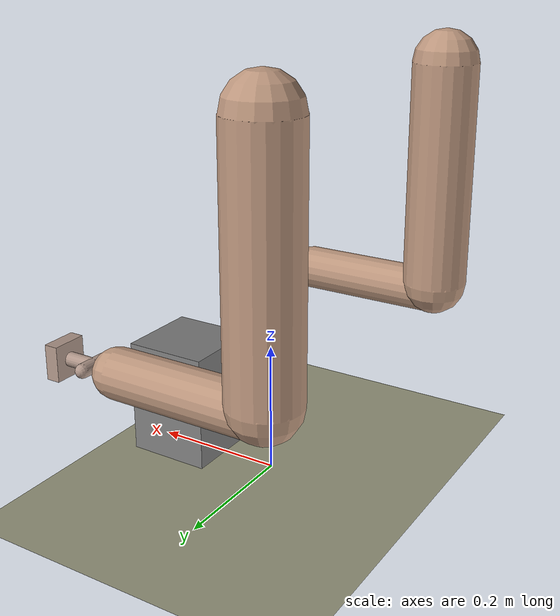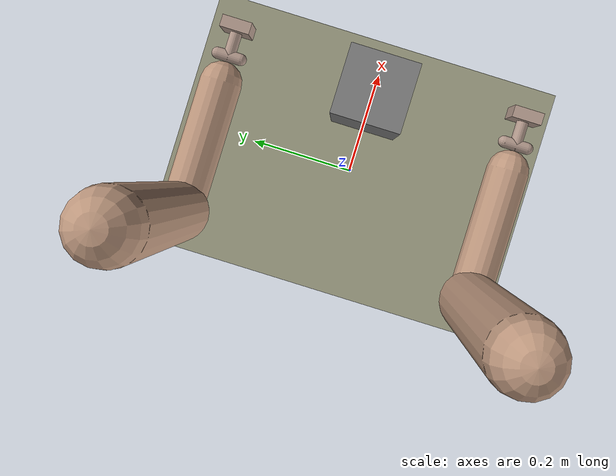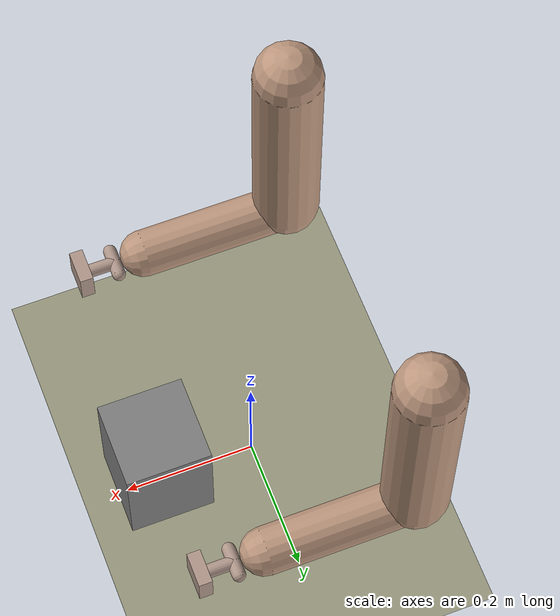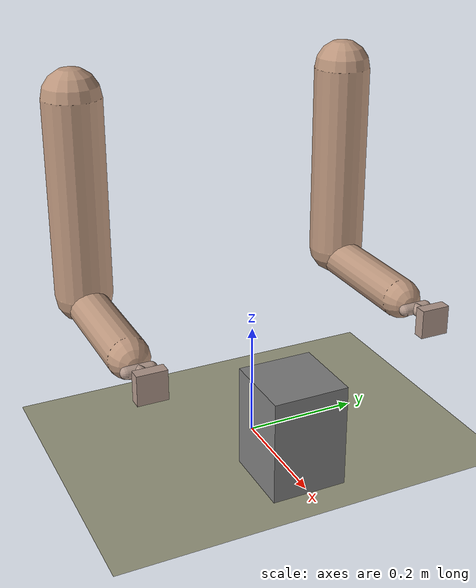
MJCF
<mujoco model="dual_arms">
	<compiler 	inertiafromgeom="true"
				angle="radian"/>

	<size 	nuser_jnt="1"
			nuser_geom="1"/>

	<option	timestep="0.01"
			gravity="0 0 -9.81"
			viscosity="0"/>

	<asset>
		<material name="MatGnd" specular=".3" shininess=".3" reflectance="0.3" rgba=".5 .55 .5 1"/>
	</asset>

	<default>
		<joint limited="true" damping="1" stiffness="0" armature=".1" user="0"/>
		<geom solref="0.008 1" solimp="0.95 0.95 0.01" margin="0.001" user="0"/>
		<motor ctrllimited="true" ctrlrange="-1 1"/>
		<position ctrllimited="true"/>

		<default class='0'>
			<geom friction="1 0.005 0.001" rgba=".75 .6 .5 1" contype="1" conaffinity="0"/>
		</default>

		<default class='1'>
			<geom friction="1 0.005 0.001" rgba=".7 .6 .55 1" contype="1" conaffinity="0"/>
		</default>

		<default class='l_arm'>
			<joint damping="5"/>
		</default>

		<default class='r_arm'>
			<joint damping="5"/>
		</default>
	</default>

	<worldbody>
		<light directional="true" cutoff="40" exponent="10" diffuse=".4 .4 .4" specular=".7 .7 .7" pos="0 0 1.5" dir="0 0 -1"/>
		<geom name="tableTop" material="MatGnd" type="plane" pos="0.15 0 0" size="0.4 0.6 0.5" rgba=".6 .6 .5 1" contype="1" conaffinity="1"/>

		<!--  ================= Left Arm ================= /-->
		<body name="left_upperarm" pos="-0.15 -0.25 0.6">
			<geom class="0" type="capsule" fromto="0 0 0 0 0 -0.345" size="0.05"/>
			<joint class='l_arm' name="l_s_abduction" type="hinge" pos="0 0 0" axis="1 0 0" range="-1.57 .7" user="001"/>
			<joint class='l_arm' name="l_s_flexion" type="hinge" pos="0 0 0" axis="0 -1 0" range="-.85 1.57" user="002"/>
			<joint class='l_arm' name="l_s_rotation" type="hinge" pos="0 0 0" axis="0 0 1" range="-.85 .85" user="003"/>

			<body name="left_forearm" pos="0 0 -0.36">
				<geom class="0" type="capsule" fromto="0 0 0 0.225 0 0" size="0.035"/>
				<joint class='l_arm' name="l_e_flexion" type="hinge" pos="0 0 0" axis="0 -1 0" range="-1.5 1.05" user="004"/>
				<joint class='l_arm' name="l_e_pronation" type="hinge" pos="0 0 0" axis="-1 0 0" range="-1.5 1.57" user="005"/>

		<!--  ================= Left Palm ================= /-->

				<body name="left_paddle" pos="0.27 0 0" quat="0 1 0 0">
					<site name="l_ee" pos="0.05 0.0 0" size="0.01" />
					<geom class="1" name="l_paddle_link" type="capsule" fromto="0 .0 0 0.05 0.0 0" size="0.01" />
					<geom class="1" name="l_paddle" type="box" pos="0.05 0.0 0" size="0.01 0.025 0.025" />

					<geom class="1" name="l_Geomclaw" type="capsule" fromto="0 .02 0 0 -.02 0" size="0.01" />
					<joint name="l_w_abduction" type="hinge" pos="0 0 0" axis="0 0 1" range="-.5 .5" user="006"/>
					<joint name="l_w_flexion" type="hinge" pos="0 0 0" axis="0 -1 0" range="-1.05 1.05" user="007"/>
				</body>

			</body>

		</body>

			<!--  ================= Right Arm ================= /-->
		<body name="right_upperarm" pos="-0.15 0.25 0.6">
			<geom class="0" type="capsule" fromto="0 0 0 0 0 -0.345" size="0.05"/>
			<joint class='r_arm' name="r_s_abduction" type="hinge" pos="0 0 0" axis="1 0 0" range="-1.57 .7" user="001"/>
			<joint class='r_arm' name="r_s_flexion" type="hinge" pos="0 0 0" axis="0 -1 0" range="-.85 1.57" user="002"/>
			<joint class='r_arm' name="r_s_rotation" type="hinge" pos="0 0 0" axis="0 0 1" range="-.85 .85" user="003"/>

			<body name="right_forearm" pos="0 0 -0.36">
				<geom class="0" type="capsule" fromto="0 0 0 0.225 0 0" size="0.035"/>
				<joint class='r_arm' name="r_e_flexion" type="hinge" pos="0 0 0" axis="0 -1 0" range="-1.5 1.05" user="004"/>
				<joint class='r_arm' name="r_e_pronation" type="hinge" pos="0 0 0" axis="-1 0 0" range="-1.5 1.57" user="005"/>

	<!--  ================= Right Palm ================= /-->

				<body name="right_paddle" pos="0.27 0 0" quat="0 1 0 0">
					<site name="r_ee" pos="0.05 0.0 0" size="0.01" />
					<geom class="1" name="r_paddle_link" type="capsule" fromto="0 .0 0 0.05 0.0 0" size="0.01" />
					<geom class="1" name="r_paddle" type="box" pos="0.05 0.0 0" size="0.01 0.025 0.025" />

					<geom class="1" name="r_Geomclaw" type="capsule" fromto="0 .02 0 0 -.02 0" size="0.01" />
					<joint name="r_w_abduction" type="hinge" pos="0 0 0" axis="0 0 1" range="-.5 .5" user="006"/>
					<joint name="r_w_flexion" type="hinge" pos="0 0 0" axis="0 -1 0" range="-1.05 1.05" user="007"/>

				</body>

			</body>

		</body>

		<!--  ================= TARGET ================= /-->
		<body name="target" pos="0.15 0 0.091" quat="1. 0 0 0">
			<site name="box_push1" pos="-0.055 0.0 0.055" size="0.01" />
			<site name="box_push2" pos="-0.055 0.0 0.000" size="0.01" />
			<site name="box_push3" pos="-0.055 0.0 -0.055" size="0.01" />
			<site name="box_side_r" pos="0.0 0.0550 0" size="0.01" />
			<site name="box_side_l" pos="0.0 -0.0550 0" size="0.01" />
			<geom type="box" name="geom_target" size="0.065 0.065 0.09" pos="0 0 0" rgba="0.5 0.5 0.5 1" />
			<joint name="fr" type="free" limited='false' damping="0" armature="0" user="010"/>
		</body>

	</worldbody>

	<actuator>

		<!--  ================= Torque actuators ================= /-->

		<motor joint='l_s_abduction' 	name='ls_abduction' gear="1"/>
		<motor joint='l_s_flexion' 		name='ls_flexion' 	gear="1"/>
		<motor joint='l_s_rotation' 	name='ls_rotation' 	gear="1"/>
		<motor joint='l_e_flexion' 		name='le_flexion' 	gear="1"/>
		<motor joint='l_e_pronation' 	name='le_pronation' gear="1"/>
		<motor joint='l_w_abduction' 	name='lw_abduction' gear="1"/>
		<motor joint='l_w_flexion' 		name='lw_flexion' 	gear="1"/>

		<motor joint='r_s_abduction' 	name='rs_abduction' gear="1"/>
		<motor joint='r_s_flexion' 		name='rs_flexion' 	gear="1"/>
		<motor joint='r_s_rotation' 	name='rs_rotation' 	gear="1"/>
		<motor joint='r_e_flexion' 		name='re_flexion' 	gear="1"/>
		<motor joint='r_e_pronation' 	name='re_pronation' gear="1"/>
		<motor joint='r_w_abduction' 	name='rw_abduction' gear="1"/>
		<motor joint='r_w_flexion' 		name='rw_flexion' 	gear="1"/>

        <!--  ================= Position actuators ================= /-->

	</actuator>

</mujoco>
